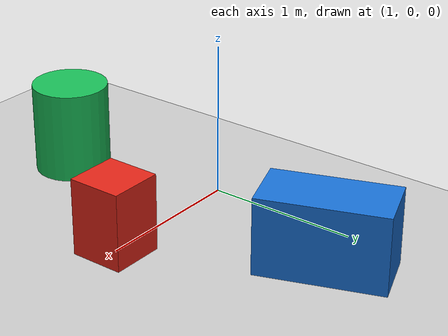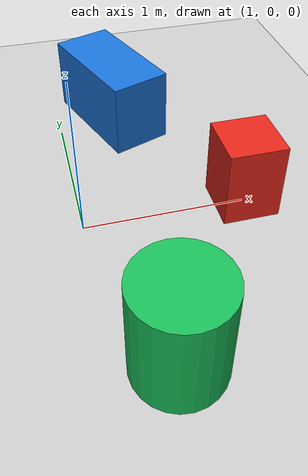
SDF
<?xml version="1.0" ?>
<sdf version="1.9">
  <world name="empty">
    <physics name="10ms" type="ignored">
      <max_step_size>0.01</max_step_size>
      <real_time_factor>1.0</real_time_factor>
    </physics>

    <plugin
      filename="gz-sim-physics-system"
      name="gz::sim::systems::Physics"/>

    <plugin
      filename="gz-sim-user-commands-system"
      name="gz::sim::systems::UserCommands"/>

    <plugin
      filename="gz-sim-scene-broadcaster-system"
      name="gz::sim::systems::SceneBroadcaster"/>

    <plugin
      filename="gz-sim-sensors-system"
      name="gz::sim::systems::Sensors">
      <render_engine>ogre2</render_engine>
    </plugin>

    <light type="directional" name="sun">
      <cast_shadows>true</cast_shadows>
      <pose>0 0 10 0 0 0</pose>
      <diffuse>0.8 0.8 0.8 1</diffuse>
      <specular>0.2 0.2 0.2 1</specular>
      <direction>-0.5 0.1 -0.9</direction>
    </light>

    <model name="ground_plane">
      <static>true</static>
      <link name="link">
        <collision name="collision">
          <geometry>
            <plane>
              <normal>0 0 1</normal>
              <size>100 100</size>
            </plane>
          </geometry>
        </collision>
        <visual name="visual">
          <geometry>
            <plane>
              <normal>0 0 1</normal>
              <size>100 100</size>
            </plane>
          </geometry>
          <material>
            <ambient>0.8 0.8 0.8 1</ambient>
            <diffuse>0.8 0.8 0.8 1</diffuse>
          </material>
        </visual>
      </link>
    </model>

    <model name="scan_box_front">
      <static>true</static>
      <pose>2.0 0 0.25 0 0 0</pose>
      <link name="link">
        <collision name="collision">
          <geometry>
            <box>
              <size>0.35 0.35 0.5</size>
            </box>
          </geometry>
        </collision>
        <visual name="visual">
          <geometry>
            <box>
              <size>0.35 0.35 0.5</size>
            </box>
          </geometry>
          <material>
            <ambient>0.9 0.15 0.1 1</ambient>
            <diffuse>0.9 0.15 0.1 1</diffuse>
          </material>
        </visual>
      </link>
    </model>

    <model name="scan_box_left">
      <static>true</static>
      <pose>1.4 1.1 0.25 0 0 0.35</pose>
      <link name="link">
        <collision name="collision">
          <geometry>
            <box>
              <size>0.4 0.8 0.5</size>
            </box>
          </geometry>
        </collision>
        <visual name="visual">
          <geometry>
            <box>
              <size>0.4 0.8 0.5</size>
            </box>
          </geometry>
          <material>
            <ambient>0.1 0.45 0.85 1</ambient>
            <diffuse>0.1 0.45 0.85 1</diffuse>
          </material>
        </visual>
      </link>
    </model>

    <model name="scan_cylinder_right">
      <static>true</static>
      <pose>1.3 -1.0 0.3 0 0 0</pose>
      <link name="link">
        <collision name="collision">
          <geometry>
            <cylinder>
              <radius>0.25</radius>
              <length>0.6</length>
            </cylinder>
          </geometry>
        </collision>
        <visual name="visual">
          <geometry>
            <cylinder>
              <radius>0.25</radius>
              <length>0.6</length>
            </cylinder>
          </geometry>
          <material>
            <ambient>0.1 0.75 0.35 1</ambient>
            <diffuse>0.1 0.75 0.35 1</diffuse>
          </material>
        </visual>
      </link>
    </model>
  </world>
</sdf>
